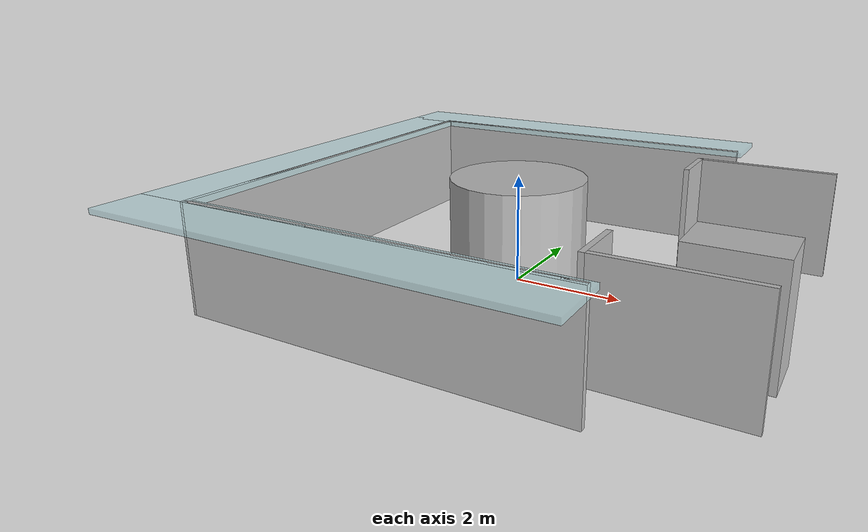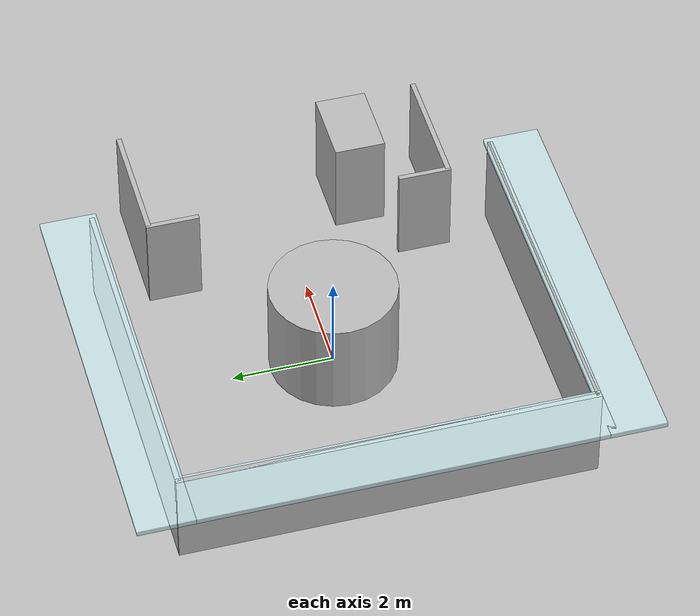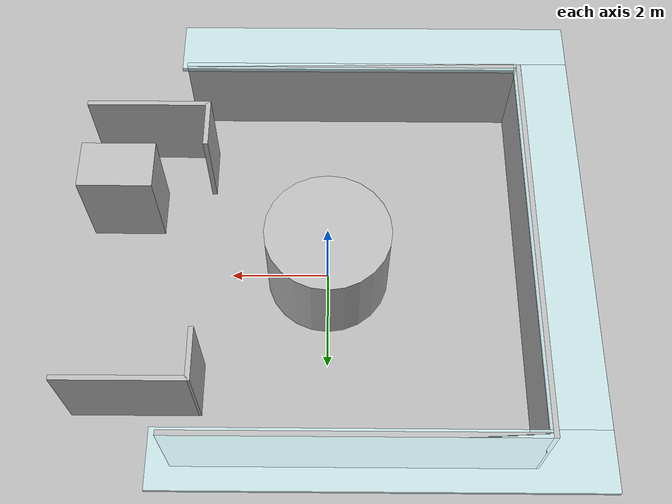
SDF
<?xml version="1.0"?>
<sdf version="1.6">
  <model name="icy_interior">

    <static>true</static>

    <!-- Wall A. -->
    <link name="A">
      <pose>3.75 3 1 0 0 0</pose>
      <must_be_base_link>true</must_be_base_link>
      <collision name="a_col">
        <geometry>
          <box>
            <size>2.5 0.1 2</size>
          </box>
        </geometry>
      </collision>
      <visual name="a_vis">
        <geometry>
          <box>
            <size>2.5 0.1 2</size>
          </box>
        </geometry>
        <material>
          <script>
            <uri>file://media/icy.material</uri>
            <name>Ice</name>
          </script>
        </material>
      </visual>
    </link>

    <!-- Wall B. -->
    <link name="B">
      <pose>3.75 -3 1 0 0 0</pose>
      <must_be_base_link>true</must_be_base_link>
      <collision name="b_col">
        <geometry>
          <box>
            <size>2.5 0.1 2</size>
          </box>
        </geometry>
      </collision>
      <visual name="b_vis">
        <geometry>
          <box>
            <size>2.5 0.1 2</size>
          </box>
        </geometry>
        <material>
          <script>
            <uri>file://media/icy.material</uri>
            <name>Ice</name>
          </script>
        </material>
      </visual>
    </link>

    <!-- Wall C. (y is not exactly 2.5 to offset for the wall width) -->
    <link name="C">
      <pose>2.5 2.525 1 0 0 0</pose>
      <must_be_base_link>true</must_be_base_link>
      <collision name="c_col">
        <geometry>
          <box>
            <size>0.1 1.05 2</size>
          </box>
        </geometry>
      </collision>
      <visual name="c_vis">
        <geometry>
          <box>
            <size>0.1 1.05 2</size>
          </box>
        </geometry>
        <material>
          <script>
            <uri>file://media/icy.material</uri>
            <name>Ice</name>
          </script>
        </material>
      </visual>
    </link>

    <!-- Wall D. (y is not exactly 2.5 to offset for the wall width) -->
    <link name="D">
      <pose>2.5 -2.525 1 0 0 0</pose>
      <must_be_base_link>true</must_be_base_link>
      <collision name="d_col">
        <geometry>
          <box>
            <size>0.1 1.05 2</size>
          </box>
        </geometry>
      </collision>
      <visual name="d_vis">
        <geometry>
          <box>
            <size>0.1 1.05 2</size>
          </box>
        </geometry>
        <material>
          <script>
            <uri>file://media/icy.material</uri>
            <name>Ice</name>
          </script>
        </material>
      </visual>
    </link>

    <!-- Cylinder E. -->
    <link name="E">
      <pose>0 0 1 0 0 0</pose>
      <must_be_base_link>true</must_be_base_link>
      <collision name="e_col">
        <geometry>
          <cylinder>
            <radius>1.25</radius>
            <length>2</length>
          </cylinder>
        </geometry>
      </collision>
      <visual name="e_vis">
        <geometry>
          <cylinder>
            <radius>1.25</radius>
            <length>2</length>
          </cylinder>
        </geometry>
        <material>
          <script>
            <uri>file://media/icy.material</uri>
            <name>Ice</name>
          </script>
        </material>
      </visual>
    </link>

    <!-- Wall F. -->
    <link name="F">
      <pose>-0.5 4 1 0 0 0</pose>
      <must_be_base_link>true</must_be_base_link>
      <collision name="f_col">
        <geometry>
          <box>
            <size>7 0.1 2</size>
          </box>
        </geometry>
      </collision>
      <visual name="f_vis">
        <geometry>
          <box>
            <size>7 0.1 2</size>
          </box>
        </geometry>
        <material>
          <script>
            <uri>file://media/icy.material</uri>
            <name>Ice</name>
          </script>
        </material>
      </visual>
    </link>

    <!-- Wall G. -->
    <link name="G">
      <pose>-0.5 -4 1 0 0 0</pose>
      <must_be_base_link>true</must_be_base_link>
      <collision name="f_col">
        <geometry>
          <box>
            <size>7 0.1 2</size>
          </box>
        </geometry>
      </collision>
      <visual name="f_vis">
        <geometry>
          <box>
            <size>7 0.1 2</size>
          </box>
        </geometry>
        <material>
          <script>
            <uri>file://media/icy.material</uri>
            <name>Ice</name>
          </script>
        </material>
      </visual>
    </link>

    <!-- Wall H. -->
    <link name="H">
      <pose>-4 0 1 0 0 0</pose>
      <must_be_base_link>true</must_be_base_link>
      <collision name="f_col">
        <geometry>
          <box>
            <size>0.1 8.1 2</size>
          </box>
        </geometry>
      </collision>
      <visual name="f_vis">
        <geometry>
          <box>
            <size>0.1 8.1 2</size>
          </box>
        </geometry>
        <material>
          <script>
            <uri>file://media/icy.material</uri>
            <name>Ice</name>
          </script>
        </material>
      </visual>
    </link>

    <!-- Block I. -->
    <link name="I">
      <pose>4.25 -1.5 1 0 0 0</pose>
      <must_be_base_link>true</must_be_base_link>
      <collision name="i_col">
        <geometry>
          <box>
            <size>1.5 1 2</size>
          </box>
        </geometry>
      </collision>
      <visual name="i_vis">
        <geometry>
          <box>
            <size>1.5 1 2</size>
          </box>
        </geometry>
        <material>
          <script>
            <uri>file://media/icy.material</uri>
            <name>Ice</name>
          </script>
        </material>
      </visual>
    </link>

    <!-- Roof 1 -->
    <link name="R1">
      <pose>-0.95 4.45 1.95 0 0 0</pose>
      <must_be_base_link>true</must_be_base_link>
      <collision name="r1_col">
        <geometry>
          <box>
            <size>8.1 1.1 0.1</size>
          </box>
        </geometry>
      </collision>
      <visual name="r1_vis">
        <geometry>
          <box>
            <size>8.1 1.1 0.1</size>
          </box>
        </geometry>
        <material>
          <ambient>0.811765 0.929412 0.945098 0.85</ambient>
          <diffuse>0.811765 0.929412 0.945098 0.85</diffuse>
          <specular>0.3 0.3 0.3 0.85</specular>
        </material>
      </visual>
    </link>

    <!-- Roof 2 -->
    <link name="R2">
      <pose>-0.95 -4.45 1.95 0 0 0</pose>
      <must_be_base_link>true</must_be_base_link>
      <collision name="r2_col">
        <geometry>
          <box>
            <size>8.1 1.1 0.1</size>
          </box>
        </geometry>
      </collision>
      <visual name="r2_vis">
        <geometry>
          <box>
            <size>8.1 1.1 0.1</size>
          </box>
        </geometry>
        <material>
          <ambient>0.811765 0.929412 0.945098 0.85</ambient>
          <diffuse>0.811765 0.929412 0.945098 0.85</diffuse>
          <specular>0.3 0.3 0.3 0.85</specular>
        </material>
      </visual>
    </link>

    <!-- Roof 3 -->
    <link name="R3">
      <pose>-4.45 0 1.95 0 0 0</pose>
      <must_be_base_link>true</must_be_base_link>
      <collision name="r3_col">
        <geometry>
          <box>
            <size>1.1 8.1 0.1</size>
          </box>
        </geometry>
      </collision>
      <visual name="r3_vis">
        <geometry>
          <box>
            <size>1.1 8.1 0.1</size>
          </box>
        </geometry>
        <material>
          <ambient>0.811765 0.929412 0.945098 0.85</ambient>
          <diffuse>0.811765 0.929412 0.945098 0.85</diffuse>
          <specular>0.3 0.3 0.3 0.85</specular>
        </material>
      </visual>
    </link>

  </model>
</sdf>
